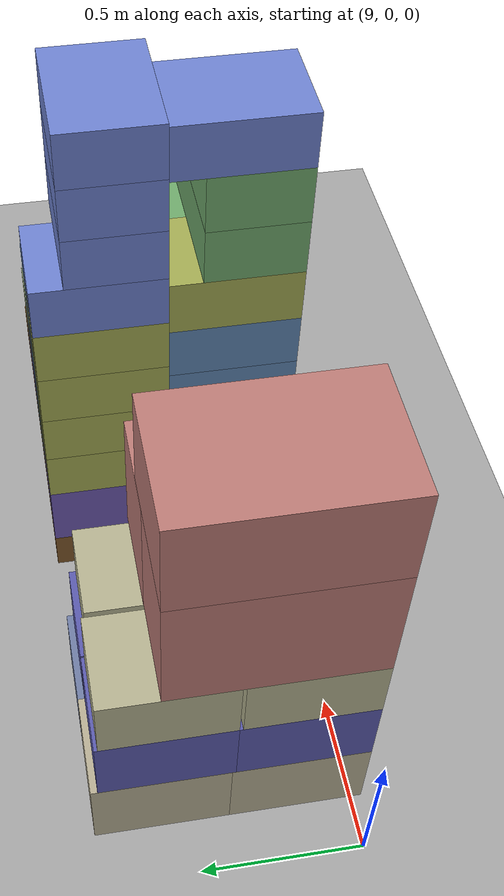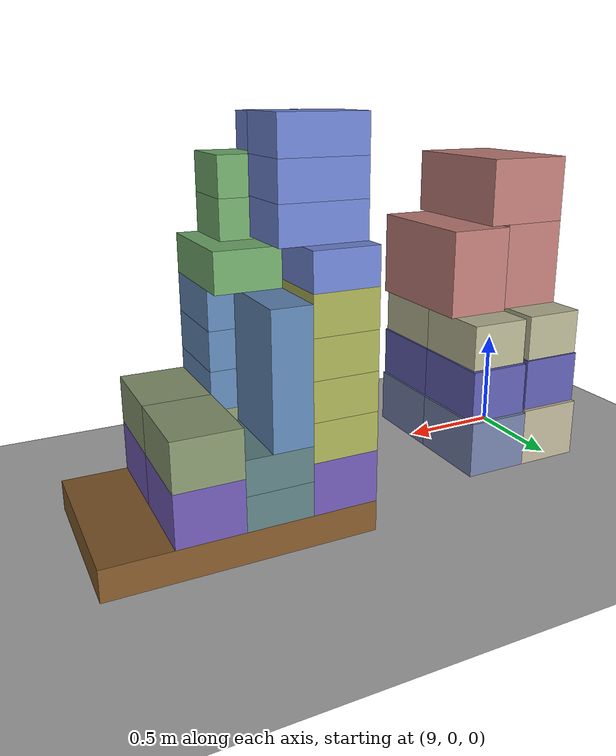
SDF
<sdf version="1.10">
 <world name="pallet_towers">
  <model name="ground_plane">
   <static>true</static>
   <link name="link">
    <collision name="collision">
     <geometry><plane><normal>0 0 1</normal><size>30 30</size></plane></geometry>
     <surface>
      <friction><ode><mu>0.35</mu><mu2>0.35</mu2></ode></friction>
      <bounce><restitution_coefficient>0</restitution_coefficient><threshold>100000</threshold></bounce>
      <contact><ode><kp>1000000</kp><kd>100</kd><max_vel>1</max_vel><min_depth>0.0005</min_depth></ode></contact>
     </surface>
    </collision>
    <visual name="visual">
     <geometry><plane><normal>0 0 1</normal><size>30 30</size></plane></geometry>
     <material><ambient>0.65 0.65 0.65 1</ambient><diffuse>0.65 0.65 0.65 1</diffuse></material>
    </visual>
   </link>
  </model>
  <model name="box_p06_0001_WATER24_003_WATER24">
   <static>false</static>
   <pose>9.25 0.6 0.279 0 0 0</pose>
   <link name="body">
    <inertial>
     <mass>13</mass>
     <inertia>
      <ixx>0.252308333</ixx>
      <ixy>0</ixy>
      <ixz>0</ixz>
      <iyy>0.176475</iyy>
      <iyz>0</iyz>
      <izz>0.270833333</izz>
     </inertia>
    </inertial>
    <collision name="collision">
     <geometry><box><size>0.3 0.4 0.27</size></box></geometry>
     <surface>
      <friction><ode><mu>0.35</mu><mu2>0.35</mu2></ode></friction>
      <bounce><restitution_coefficient>0</restitution_coefficient><threshold>100000</threshold></bounce>
      <contact><ode><kp>1000000</kp><kd>100</kd><max_vel>1</max_vel><min_depth>0.0005</min_depth></ode></contact>
     </surface>
    </collision>
    <visual name="visual">
     <geometry><box><size>0.3 0.4 0.27</size></box></geometry>
     <material>
      <ambient>0.721568627 0.68627451 0.584313725 1</ambient>
      <diffuse>0.721568627 0.68627451 0.584313725 1</diffuse>
      <specular>0.05 0.05 0.05 1</specular>
     </material>
    </visual>
   </link>
  </model>
  <model name="box_p06_0002_WATER24_004_WATER24">
   <static>false</static>
   <pose>9.25 0.2 0.279 0 0 0</pose>
   <link name="body">
    <inertial>
     <mass>13</mass>
     <inertia>
      <ixx>0.252308333</ixx>
      <ixy>0</ixy>
      <ixz>0</ixz>
      <iyy>0.176475</iyy>
      <iyz>0</iyz>
      <izz>0.270833333</izz>
     </inertia>
    </inertial>
    <collision name="collision">
     <geometry><box><size>0.3 0.4 0.27</size></box></geometry>
     <surface>
      <friction><ode><mu>0.35</mu><mu2>0.35</mu2></ode></friction>
      <bounce><restitution_coefficient>0</restitution_coefficient><threshold>100000</threshold></bounce>
      <contact><ode><kp>1000000</kp><kd>100</kd><max_vel>1</max_vel><min_depth>0.0005</min_depth></ode></contact>
     </surface>
    </collision>
    <visual name="visual">
     <geometry><box><size>0.3 0.4 0.27</size></box></geometry>
     <material>
      <ambient>0.721568627 0.68627451 0.584313725 1</ambient>
      <diffuse>0.721568627 0.68627451 0.584313725 1</diffuse>
      <specular>0.05 0.05 0.05 1</specular>
     </material>
    </visual>
   </link>
  </model>
  <model name="box_p06_0005_COLA24_001_COLA24">
   <static>false</static>
   <pose>9.55 0.6 0.274 0 0 0</pose>
   <link name="body">
    <inertial>
     <mass>13.5</mass>
     <inertia><ixx>0.25605</ixx><ixy>0</ixy><ixz>0</ixz><iyy>0.1773</iyy><iyz>0</iyz><izz>0.28125</izz></inertia>
    </inertial>
    <collision name="collision">
     <geometry><box><size>0.3 0.4 0.26</size></box></geometry>
     <surface>
      <friction><ode><mu>0.35</mu><mu2>0.35</mu2></ode></friction>
      <bounce><restitution_coefficient>0</restitution_coefficient><threshold>100000</threshold></bounce>
      <contact><ode><kp>1000000</kp><kd>100</kd><max_vel>1</max_vel><min_depth>0.0005</min_depth></ode></contact>
     </surface>
    </collision>
    <visual name="visual">
     <geometry><box><size>0.3 0.4 0.26</size></box></geometry>
     <material>
      <ambient>0.439215686 0.494117647 0.647058824 1</ambient>
      <diffuse>0.439215686 0.494117647 0.647058824 1</diffuse>
      <specular>0.05 0.05 0.05 1</specular>
     </material>
    </visual>
   </link>
  </model>
  <model name="box_p06_0008_COLA24_004_COLA24">
   <static>false</static>
   <pose>9.55 0.2 0.274 0 0 0</pose>
   <link name="body">
    <inertial>
     <mass>13.5</mass>
     <inertia><ixx>0.25605</ixx><ixy>0</ixy><ixz>0</ixz><iyy>0.1773</iyy><iyz>0</iyz><izz>0.28125</izz></inertia>
    </inertial>
    <collision name="collision">
     <geometry><box><size>0.3 0.4 0.26</size></box></geometry>
     <surface>
      <friction><ode><mu>0.35</mu><mu2>0.35</mu2></ode></friction>
      <bounce><restitution_coefficient>0</restitution_coefficient><threshold>100000</threshold></bounce>
      <contact><ode><kp>1000000</kp><kd>100</kd><max_vel>1</max_vel><min_depth>0.0005</min_depth></ode></contact>
     </surface>
    </collision>
    <visual name="visual">
     <geometry><box><size>0.3 0.4 0.26</size></box></geometry>
     <material>
      <ambient>0.439215686 0.494117647 0.647058824 1</ambient>
      <diffuse>0.439215686 0.494117647 0.647058824 1</diffuse>
      <specular>0.05 0.05 0.05 1</specular>
     </material>
    </visual>
   </link>
  </model>
  <model name="box_p06_0011_PASTA_001_PASTA">
   <static>false</static>
   <pose>9.545 0.195 0.524 0 0 0</pose>
   <link name="body">
    <inertial>
     <mass>8</mass>
     <inertia>
      <ixx>0.1398</ixx>
      <ixy>0</ixy>
      <ixz>0</ixz>
      <iyy>0.0944666667</iyy>
      <iyz>0</iyz>
      <izz>0.157466667</izz>
     </inertia>
    </inertial>
    <collision name="collision">
     <geometry><box><size>0.29 0.39 0.24</size></box></geometry>
     <surface>
      <friction><ode><mu>0.35</mu><mu2>0.35</mu2></ode></friction>
      <bounce><restitution_coefficient>0</restitution_coefficient><threshold>100000</threshold></bounce>
      <contact><ode><kp>1000000</kp><kd>100</kd><max_vel>1</max_vel><min_depth>0.0005</min_depth></ode></contact>
     </surface>
    </collision>
    <visual name="visual">
     <geometry><box><size>0.29 0.39 0.24</size></box></geometry>
     <material>
      <ambient>0.356862745 0.356862745 0.682352941 1</ambient>
      <diffuse>0.356862745 0.356862745 0.682352941 1</diffuse>
      <specular>0.05 0.05 0.05 1</specular>
     </material>
    </visual>
   </link>
  </model>
  <model name="box_p06_0012_PASTA_002_PASTA">
   <static>false</static>
   <pose>9.545 0.585 0.524 0 0 0</pose>
   <link name="body">
    <inertial>
     <mass>8</mass>
     <inertia>
      <ixx>0.1398</ixx>
      <ixy>0</ixy>
      <ixz>0</ixz>
      <iyy>0.0944666667</iyy>
      <iyz>0</iyz>
      <izz>0.157466667</izz>
     </inertia>
    </inertial>
    <collision name="collision">
     <geometry><box><size>0.29 0.39 0.24</size></box></geometry>
     <surface>
      <friction><ode><mu>0.35</mu><mu2>0.35</mu2></ode></friction>
      <bounce><restitution_coefficient>0</restitution_coefficient><threshold>100000</threshold></bounce>
      <contact><ode><kp>1000000</kp><kd>100</kd><max_vel>1</max_vel><min_depth>0.0005</min_depth></ode></contact>
     </surface>
    </collision>
    <visual name="visual">
     <geometry><box><size>0.29 0.39 0.24</size></box></geometry>
     <material>
      <ambient>0.356862745 0.356862745 0.682352941 1</ambient>
      <diffuse>0.356862745 0.356862745 0.682352941 1</diffuse>
      <specular>0.05 0.05 0.05 1</specular>
     </material>
    </visual>
   </link>
  </model>
  <model name="box_p06_0013_PASTA_003_PASTA">
   <static>false</static>
   <pose>9.245 0.195 0.534 0 0 0</pose>
   <link name="body">
    <inertial>
     <mass>8</mass>
     <inertia>
      <ixx>0.1398</ixx>
      <ixy>0</ixy>
      <ixz>0</ixz>
      <iyy>0.0944666667</iyy>
      <iyz>0</iyz>
      <izz>0.157466667</izz>
     </inertia>
    </inertial>
    <collision name="collision">
     <geometry><box><size>0.29 0.39 0.24</size></box></geometry>
     <surface>
      <friction><ode><mu>0.35</mu><mu2>0.35</mu2></ode></friction>
      <bounce><restitution_coefficient>0</restitution_coefficient><threshold>100000</threshold></bounce>
      <contact><ode><kp>1000000</kp><kd>100</kd><max_vel>1</max_vel><min_depth>0.0005</min_depth></ode></contact>
     </surface>
    </collision>
    <visual name="visual">
     <geometry><box><size>0.29 0.39 0.24</size></box></geometry>
     <material>
      <ambient>0.356862745 0.356862745 0.682352941 1</ambient>
      <diffuse>0.356862745 0.356862745 0.682352941 1</diffuse>
      <specular>0.05 0.05 0.05 1</specular>
     </material>
    </visual>
   </link>
  </model>
  <model name="box_p06_0014_PASTA_004_PASTA">
   <static>false</static>
   <pose>9.245 0.585 0.534 0 0 0</pose>
   <link name="body">
    <inertial>
     <mass>8</mass>
     <inertia>
      <ixx>0.1398</ixx>
      <ixy>0</ixy>
      <ixz>0</ixz>
      <iyy>0.0944666667</iyy>
      <iyz>0</iyz>
      <izz>0.157466667</izz>
     </inertia>
    </inertial>
    <collision name="collision">
     <geometry><box><size>0.29 0.39 0.24</size></box></geometry>
     <surface>
      <friction><ode><mu>0.35</mu><mu2>0.35</mu2></ode></friction>
      <bounce><restitution_coefficient>0</restitution_coefficient><threshold>100000</threshold></bounce>
      <contact><ode><kp>1000000</kp><kd>100</kd><max_vel>1</max_vel><min_depth>0.0005</min_depth></ode></contact>
     </surface>
    </collision>
    <visual name="visual">
     <geometry><box><size>0.29 0.39 0.24</size></box></geometry>
     <material>
      <ambient>0.356862745 0.356862745 0.682352941 1</ambient>
      <diffuse>0.356862745 0.356862745 0.682352941 1</diffuse>
      <specular>0.05 0.05 0.05 1</specular>
     </material>
    </visual>
   </link>
  </model>
  <model name="box_p06_0017_TOMATO_001_TOMATO">
   <static>false</static>
   <pose>9.54 0.19 0.749 0 0 0</pose>
   <link name="body">
    <inertial>
     <mass>9</mass>
     <inertia><ixx>0.141375</ixx><ixy>0</ixy><ixz>0</ixz><iyy>0.091875</iyy><iyz>0</iyz><izz>0.1671</izz></inertia>
    </inertial>
    <collision name="collision">
     <geometry><box><size>0.28 0.38 0.21</size></box></geometry>
     <surface>
      <friction><ode><mu>0.35</mu><mu2>0.35</mu2></ode></friction>
      <bounce><restitution_coefficient>0</restitution_coefficient><threshold>100000</threshold></bounce>
      <contact><ode><kp>1000000</kp><kd>100</kd><max_vel>1</max_vel><min_depth>0.0005</min_depth></ode></contact>
     </surface>
    </collision>
    <visual name="visual">
     <geometry><box><size>0.28 0.38 0.21</size></box></geometry>
     <material>
      <ambient>0.71372549 0.701960784 0.568627451 1</ambient>
      <diffuse>0.71372549 0.701960784 0.568627451 1</diffuse>
      <specular>0.05 0.05 0.05 1</specular>
     </material>
    </visual>
   </link>
  </model>
  <model name="box_p06_0018_TOMATO_002_TOMATO">
   <static>false</static>
   <pose>9.54 0.57 0.749 0 0 0</pose>
   <link name="body">
    <inertial>
     <mass>9</mass>
     <inertia><ixx>0.141375</ixx><ixy>0</ixy><ixz>0</ixz><iyy>0.091875</iyy><iyz>0</iyz><izz>0.1671</izz></inertia>
    </inertial>
    <collision name="collision">
     <geometry><box><size>0.28 0.38 0.21</size></box></geometry>
     <surface>
      <friction><ode><mu>0.35</mu><mu2>0.35</mu2></ode></friction>
      <bounce><restitution_coefficient>0</restitution_coefficient><threshold>100000</threshold></bounce>
      <contact><ode><kp>1000000</kp><kd>100</kd><max_vel>1</max_vel><min_depth>0.0005</min_depth></ode></contact>
     </surface>
    </collision>
    <visual name="visual">
     <geometry><box><size>0.28 0.38 0.21</size></box></geometry>
     <material>
      <ambient>0.71372549 0.701960784 0.568627451 1</ambient>
      <diffuse>0.71372549 0.701960784 0.568627451 1</diffuse>
      <specular>0.05 0.05 0.05 1</specular>
     </material>
    </visual>
   </link>
  </model>
  <model name="box_p06_0019_TOMATO_003_TOMATO">
   <static>false</static>
   <pose>9.24 0.58 0.759 0 0 0</pose>
   <link name="body">
    <inertial>
     <mass>9</mass>
     <inertia><ixx>0.141375</ixx><ixy>0</ixy><ixz>0</ixz><iyy>0.091875</iyy><iyz>0</iyz><izz>0.1671</izz></inertia>
    </inertial>
    <collision name="collision">
     <geometry><box><size>0.28 0.38 0.21</size></box></geometry>
     <surface>
      <friction><ode><mu>0.35</mu><mu2>0.35</mu2></ode></friction>
      <bounce><restitution_coefficient>0</restitution_coefficient><threshold>100000</threshold></bounce>
      <contact><ode><kp>1000000</kp><kd>100</kd><max_vel>1</max_vel><min_depth>0.0005</min_depth></ode></contact>
     </surface>
    </collision>
    <visual name="visual">
     <geometry><box><size>0.28 0.38 0.21</size></box></geometry>
     <material>
      <ambient>0.71372549 0.701960784 0.568627451 1</ambient>
      <diffuse>0.71372549 0.701960784 0.568627451 1</diffuse>
      <specular>0.05 0.05 0.05 1</specular>
     </material>
    </visual>
   </link>
  </model>
  <model name="box_p06_0020_TOMATO_004_TOMATO">
   <static>false</static>
   <pose>9.24 0.19 0.759 0 0 0</pose>
   <link name="body">
    <inertial>
     <mass>9</mass>
     <inertia><ixx>0.141375</ixx><ixy>0</ixy><ixz>0</ixz><iyy>0.091875</iyy><iyz>0</iyz><izz>0.1671</izz></inertia>
    </inertial>
    <collision name="collision">
     <geometry><box><size>0.28 0.38 0.21</size></box></geometry>
     <surface>
      <friction><ode><mu>0.35</mu><mu2>0.35</mu2></ode></friction>
      <bounce><restitution_coefficient>0</restitution_coefficient><threshold>100000</threshold></bounce>
      <contact><ode><kp>1000000</kp><kd>100</kd><max_vel>1</max_vel><min_depth>0.0005</min_depth></ode></contact>
     </surface>
    </collision>
    <visual name="visual">
     <geometry><box><size>0.28 0.38 0.21</size></box></geometry>
     <material>
      <ambient>0.71372549 0.701960784 0.568627451 1</ambient>
      <diffuse>0.71372549 0.701960784 0.568627451 1</diffuse>
      <specular>0.05 0.05 0.05 1</specular>
     </material>
    </visual>
   </link>
  </model>
  <model name="box_p06_0024_CEREAL_002_CEREAL">
   <static>false</static>
   <pose>9.55 0.3 1.054 0 0 0</pose>
   <link name="body">
    <inertial>
     <mass>4</mass>
     <inertia>
      <ixx>0.173333333</ixx>
      <ixy>0</ixy>
      <ixz>0</ixz>
      <iyy>0.0833333333</iyy>
      <iyz>0</iyz>
      <izz>0.15</izz>
     </inertia>
    </inertial>
    <collision name="collision">
     <geometry><box><size>0.3 0.6 0.4</size></box></geometry>
     <surface>
      <friction><ode><mu>0.35</mu><mu2>0.35</mu2></ode></friction>
      <bounce><restitution_coefficient>0</restitution_coefficient><threshold>100000</threshold></bounce>
      <contact><ode><kp>1000000</kp><kd>100</kd><max_vel>1</max_vel><min_depth>0.0005</min_depth></ode></contact>
     </surface>
    </collision>
    <visual name="visual">
     <geometry><box><size>0.3 0.6 0.4</size></box></geometry>
     <material>
      <ambient>0.741176471 0.48627451 0.462745098 1</ambient>
      <diffuse>0.741176471 0.48627451 0.462745098 1</diffuse>
      <specular>0.05 0.05 0.05 1</specular>
     </material>
    </visual>
   </link>
  </model>
  <model name="box_p06_0025_CEREAL_003_CEREAL">
   <static>false</static>
   <pose>9.25 0.3 1.064 0 0 0</pose>
   <link name="body">
    <inertial>
     <mass>4</mass>
     <inertia>
      <ixx>0.173333333</ixx>
      <ixy>0</ixy>
      <ixz>0</ixz>
      <iyy>0.0833333333</iyy>
      <iyz>0</iyz>
      <izz>0.15</izz>
     </inertia>
    </inertial>
    <collision name="collision">
     <geometry><box><size>0.3 0.6 0.4</size></box></geometry>
     <surface>
      <friction><ode><mu>0.35</mu><mu2>0.35</mu2></ode></friction>
      <bounce><restitution_coefficient>0</restitution_coefficient><threshold>100000</threshold></bounce>
      <contact><ode><kp>1000000</kp><kd>100</kd><max_vel>1</max_vel><min_depth>0.0005</min_depth></ode></contact>
     </surface>
    </collision>
    <visual name="visual">
     <geometry><box><size>0.3 0.6 0.4</size></box></geometry>
     <material>
      <ambient>0.741176471 0.48627451 0.462745098 1</ambient>
      <diffuse>0.741176471 0.48627451 0.462745098 1</diffuse>
      <specular>0.05 0.05 0.05 1</specular>
     </material>
    </visual>
   </link>
  </model>
  <model name="box_p06_0028_CEREAL_006_CEREAL">
   <static>false</static>
   <pose>9.3 0.3 1.414 0 0 0</pose>
   <link name="body">
    <inertial>
     <mass>4</mass>
     <inertia>
      <ixx>0.15</ixx>
      <ixy>0</ixy>
      <ixz>0</ixz>
      <iyy>0.0833333333</iyy>
      <iyz>0</iyz>
      <izz>0.173333333</izz>
     </inertia>
    </inertial>
    <collision name="collision">
     <geometry><box><size>0.4 0.6 0.3</size></box></geometry>
     <surface>
      <friction><ode><mu>0.35</mu><mu2>0.35</mu2></ode></friction>
      <bounce><restitution_coefficient>0</restitution_coefficient><threshold>100000</threshold></bounce>
      <contact><ode><kp>1000000</kp><kd>100</kd><max_vel>1</max_vel><min_depth>0.0005</min_depth></ode></contact>
     </surface>
    </collision>
    <visual name="visual">
     <geometry><box><size>0.4 0.6 0.3</size></box></geometry>
     <material>
      <ambient>0.741176471 0.48627451 0.462745098 1</ambient>
      <diffuse>0.741176471 0.48627451 0.462745098 1</diffuse>
      <specular>0.05 0.05 0.05 1</specular>
     </material>
    </visual>
   </link>
  </model>
  <model name="pallet_07_7">
   <static>false</static>
   <pose>10.8 0.4 0.072 0 0 0</pose>
   <link name="body">
    <inertial>
     <mass>25</mass>
     <inertia>
      <ixx>1.37653333</ixx>
      <ixy>0</ixy>
      <ixz>0</ixz>
      <iyy>3.0432</iyy>
      <iyz>0</iyz>
      <izz>4.33333333</izz>
     </inertia>
    </inertial>
    <collision name="collision">
     <geometry><box><size>1.2 0.8 0.144</size></box></geometry>
     <surface>
      <friction><ode><mu>0.35</mu><mu2>0.35</mu2></ode></friction>
      <bounce><restitution_coefficient>0</restitution_coefficient><threshold>100000</threshold></bounce>
      <contact><ode><kp>1000000</kp><kd>100</kd><max_vel>1</max_vel><min_depth>0.0005</min_depth></ode></contact>
     </surface>
    </collision>
    <visual name="visual">
     <geometry><box><size>1.2 0.8 0.144</size></box></geometry>
     <material>
      <ambient>0.5 0.34 0.16 1</ambient>
      <diffuse>0.5 0.34 0.16 1</diffuse>
      <specular>0.05 0.05 0.05 1</specular>
     </material>
    </visual>
   </link>
  </model>
  <model name="box_p07_0001_OATS_004_OATS">
   <static>false</static>
   <pose>10.95 0.6 0.264 0 0 0</pose>
   <link name="body">
    <inertial>
     <mass>7</mass>
     <inertia>
      <ixx>0.126933333</ixx>
      <ixy>0</ixy>
      <ixz>0</ixz>
      <iyy>0.0861</iyy>
      <iyz>0</iyz>
      <izz>0.145833333</izz>
     </inertia>
    </inertial>
    <collision name="collision">
     <geometry><box><size>0.3 0.4 0.24</size></box></geometry>
     <surface>
      <friction><ode><mu>0.35</mu><mu2>0.35</mu2></ode></friction>
      <bounce><restitution_coefficient>0</restitution_coefficient><threshold>100000</threshold></bounce>
      <contact><ode><kp>1000000</kp><kd>100</kd><max_vel>1</max_vel><min_depth>0.0005</min_depth></ode></contact>
     </surface>
    </collision>
    <visual name="visual">
     <geometry><box><size>0.3 0.4 0.24</size></box></geometry>
     <material>
      <ambient>0.42745098 0.345098039 0.690196078 1</ambient>
      <diffuse>0.42745098 0.345098039 0.690196078 1</diffuse>
      <specular>0.05 0.05 0.05 1</specular>
     </material>
    </visual>
   </link>
  </model>
  <model name="box_p07_0002_OATS_005_OATS">
   <static>false</static>
   <pose>10.95 0.2 0.264 0 0 0</pose>
   <link name="body">
    <inertial>
     <mass>7</mass>
     <inertia>
      <ixx>0.126933333</ixx>
      <ixy>0</ixy>
      <ixz>0</ixz>
      <iyy>0.0861</iyy>
      <iyz>0</iyz>
      <izz>0.145833333</izz>
     </inertia>
    </inertial>
    <collision name="collision">
     <geometry><box><size>0.3 0.4 0.24</size></box></geometry>
     <surface>
      <friction><ode><mu>0.35</mu><mu2>0.35</mu2></ode></friction>
      <bounce><restitution_coefficient>0</restitution_coefficient><threshold>100000</threshold></bounce>
      <contact><ode><kp>1000000</kp><kd>100</kd><max_vel>1</max_vel><min_depth>0.0005</min_depth></ode></contact>
     </surface>
    </collision>
    <visual name="visual">
     <geometry><box><size>0.3 0.4 0.24</size></box></geometry>
     <material>
      <ambient>0.42745098 0.345098039 0.690196078 1</ambient>
      <diffuse>0.42745098 0.345098039 0.690196078 1</diffuse>
      <specular>0.05 0.05 0.05 1</specular>
     </material>
    </visual>
   </link>
  </model>
  <model name="box_p07_0003_OATS_006_OATS">
   <static>false</static>
   <pose>10.35 0.6 0.264 0 0 0</pose>
   <link name="body">
    <inertial>
     <mass>7</mass>
     <inertia>
      <ixx>0.126933333</ixx>
      <ixy>0</ixy>
      <ixz>0</ixz>
      <iyy>0.0861</iyy>
      <iyz>0</iyz>
      <izz>0.145833333</izz>
     </inertia>
    </inertial>
    <collision name="collision">
     <geometry><box><size>0.3 0.4 0.24</size></box></geometry>
     <surface>
      <friction><ode><mu>0.35</mu><mu2>0.35</mu2></ode></friction>
      <bounce><restitution_coefficient>0</restitution_coefficient><threshold>100000</threshold></bounce>
      <contact><ode><kp>1000000</kp><kd>100</kd><max_vel>1</max_vel><min_depth>0.0005</min_depth></ode></contact>
     </surface>
    </collision>
    <visual name="visual">
     <geometry><box><size>0.3 0.4 0.24</size></box></geometry>
     <material>
      <ambient>0.42745098 0.345098039 0.690196078 1</ambient>
      <diffuse>0.42745098 0.345098039 0.690196078 1</diffuse>
      <specular>0.05 0.05 0.05 1</specular>
     </material>
    </visual>
   </link>
  </model>
  <model name="box_p07_0004_CHEESE_001_CHEESE">
   <static>false</static>
   <pose>10.35 0.2 0.224 0 0 0</pose>
   <link name="body">
    <inertial>
     <mass>9.5</mass>
     <inertia>
      <ixx>0.146933333</ixx>
      <ixy>0</ixy>
      <ixz>0</ixz>
      <iyy>0.0915166667</iyy>
      <iyz>0</iyz>
      <izz>0.197916667</izz>
     </inertia>
    </inertial>
    <collision name="collision">
     <geometry><box><size>0.3 0.4 0.16</size></box></geometry>
     <surface>
      <friction><ode><mu>0.35</mu><mu2>0.35</mu2></ode></friction>
      <bounce><restitution_coefficient>0</restitution_coefficient><threshold>100000</threshold></bounce>
      <contact><ode><kp>1000000</kp><kd>100</kd><max_vel>1</max_vel><min_depth>0.0005</min_depth></ode></contact>
     </surface>
    </collision>
    <visual name="visual">
     <geometry><box><size>0.3 0.4 0.16</size></box></geometry>
     <material>
      <ambient>0.356862745 0.494117647 0.501960784 1</ambient>
      <diffuse>0.356862745 0.494117647 0.501960784 1</diffuse>
      <specular>0.05 0.05 0.05 1</specular>
     </material>
    </visual>
   </link>
  </model>
  <model name="box_p07_0006_CHEESE_003_CHEESE">
   <static>false</static>
   <pose>10.65 0.2 0.224 0 0 0</pose>
   <link name="body">
    <inertial>
     <mass>9.5</mass>
     <inertia>
      <ixx>0.146933333</ixx>
      <ixy>0</ixy>
      <ixz>0</ixz>
      <iyy>0.0915166667</iyy>
      <iyz>0</iyz>
      <izz>0.197916667</izz>
     </inertia>
    </inertial>
    <collision name="collision">
     <geometry><box><size>0.3 0.4 0.16</size></box></geometry>
     <surface>
      <friction><ode><mu>0.35</mu><mu2>0.35</mu2></ode></friction>
      <bounce><restitution_coefficient>0</restitution_coefficient><threshold>100000</threshold></bounce>
      <contact><ode><kp>1000000</kp><kd>100</kd><max_vel>1</max_vel><min_depth>0.0005</min_depth></ode></contact>
     </surface>
    </collision>
    <visual name="visual">
     <geometry><box><size>0.3 0.4 0.16</size></box></geometry>
     <material>
      <ambient>0.356862745 0.494117647 0.501960784 1</ambient>
      <diffuse>0.356862745 0.494117647 0.501960784 1</diffuse>
      <specular>0.05 0.05 0.05 1</specular>
     </material>
    </visual>
   </link>
  </model>
  <model name="box_p07_0007_CHEESE_004_CHEESE">
   <static>false</static>
   <pose>10.65 0.6 0.224 0 0 0</pose>
   <link name="body">
    <inertial>
     <mass>9.5</mass>
     <inertia>
      <ixx>0.146933333</ixx>
      <ixy>0</ixy>
      <ixz>0</ixz>
      <iyy>0.0915166667</iyy>
      <iyz>0</iyz>
      <izz>0.197916667</izz>
     </inertia>
    </inertial>
    <collision name="collision">
     <geometry><box><size>0.3 0.4 0.16</size></box></geometry>
     <surface>
      <friction><ode><mu>0.35</mu><mu2>0.35</mu2></ode></friction>
      <bounce><restitution_coefficient>0</restitution_coefficient><threshold>100000</threshold></bounce>
      <contact><ode><kp>1000000</kp><kd>100</kd><max_vel>1</max_vel><min_depth>0.0005</min_depth></ode></contact>
     </surface>
    </collision>
    <visual name="visual">
     <geometry><box><size>0.3 0.4 0.16</size></box></geometry>
     <material>
      <ambient>0.356862745 0.494117647 0.501960784 1</ambient>
      <diffuse>0.356862745 0.494117647 0.501960784 1</diffuse>
      <specular>0.05 0.05 0.05 1</specular>
     </material>
    </visual>
   </link>
  </model>
  <model name="box_p07_0009_CHEESE_006_CHEESE">
   <static>false</static>
   <pose>10.65 0.6 0.384 0 0 0</pose>
   <link name="body">
    <inertial>
     <mass>9.5</mass>
     <inertia>
      <ixx>0.146933333</ixx>
      <ixy>0</ixy>
      <ixz>0</ixz>
      <iyy>0.0915166667</iyy>
      <iyz>0</iyz>
      <izz>0.197916667</izz>
     </inertia>
    </inertial>
    <collision name="collision">
     <geometry><box><size>0.3 0.4 0.16</size></box></geometry>
     <surface>
      <friction><ode><mu>0.35</mu><mu2>0.35</mu2></ode></friction>
      <bounce><restitution_coefficient>0</restitution_coefficient><threshold>100000</threshold></bounce>
      <contact><ode><kp>1000000</kp><kd>100</kd><max_vel>1</max_vel><min_depth>0.0005</min_depth></ode></contact>
     </surface>
    </collision>
    <visual name="visual">
     <geometry><box><size>0.3 0.4 0.16</size></box></geometry>
     <material>
      <ambient>0.356862745 0.494117647 0.501960784 1</ambient>
      <diffuse>0.356862745 0.494117647 0.501960784 1</diffuse>
      <specular>0.05 0.05 0.05 1</specular>
     </material>
    </visual>
   </link>
  </model>
  <model name="box_p07_0010_FRZVEG_001_FRZVEG">
   <static>false</static>
   <pose>10.65 0.2 0.414 0 0 0</pose>
   <link name="body">
    <inertial>
     <mass>7.5</mass>
     <inertia><ixx>0.13025</ixx><ixy>0</ixy><ixz>0</ixz><iyy>0.0865</iyy><iyz>0</iyz><izz>0.15625</izz></inertia>
    </inertial>
    <collision name="collision">
     <geometry><box><size>0.3 0.4 0.22</size></box></geometry>
     <surface>
      <friction><ode><mu>0.35</mu><mu2>0.35</mu2></ode></friction>
      <bounce><restitution_coefficient>0</restitution_coefficient><threshold>100000</threshold></bounce>
      <contact><ode><kp>1000000</kp><kd>100</kd><max_vel>1</max_vel><min_depth>0.0005</min_depth></ode></contact>
     </surface>
    </collision>
    <visual name="visual">
     <geometry><box><size>0.3 0.4 0.22</size></box></geometry>
     <material>
      <ambient>0.525490196 0.584313725 0.431372549 1</ambient>
      <diffuse>0.525490196 0.584313725 0.431372549 1</diffuse>
      <specular>0.05 0.05 0.05 1</specular>
     </material>
    </visual>
   </link>
  </model>
  <model name="box_p07_0011_FRZVEG_002_FRZVEG">
   <static>false</static>
   <pose>10.35 0.2 0.414 0 0 0</pose>
   <link name="body">
    <inertial>
     <mass>7.5</mass>
     <inertia><ixx>0.13025</ixx><ixy>0</ixy><ixz>0</ixz><iyy>0.0865</iyy><iyz>0</iyz><izz>0.15625</izz></inertia>
    </inertial>
    <collision name="collision">
     <geometry><box><size>0.3 0.4 0.22</size></box></geometry>
     <surface>
      <friction><ode><mu>0.35</mu><mu2>0.35</mu2></ode></friction>
      <bounce><restitution_coefficient>0</restitution_coefficient><threshold>100000</threshold></bounce>
      <contact><ode><kp>1000000</kp><kd>100</kd><max_vel>1</max_vel><min_depth>0.0005</min_depth></ode></contact>
     </surface>
    </collision>
    <visual name="visual">
     <geometry><box><size>0.3 0.4 0.22</size></box></geometry>
     <material>
      <ambient>0.525490196 0.584313725 0.431372549 1</ambient>
      <diffuse>0.525490196 0.584313725 0.431372549 1</diffuse>
      <specular>0.05 0.05 0.05 1</specular>
     </material>
    </visual>
   </link>
  </model>
  <model name="box_p07_0014_FRZVEG_005_FRZVEG">
   <static>false</static>
   <pose>10.95 0.2 0.494 0 0 0</pose>
   <link name="body">
    <inertial>
     <mass>7.5</mass>
     <inertia><ixx>0.13025</ixx><ixy>0</ixy><ixz>0</ixz><iyy>0.0865</iyy><iyz>0</iyz><izz>0.15625</izz></inertia>
    </inertial>
    <collision name="collision">
     <geometry><box><size>0.3 0.4 0.22</size></box></geometry>
     <surface>
      <friction><ode><mu>0.35</mu><mu2>0.35</mu2></ode></friction>
      <bounce><restitution_coefficient>0</restitution_coefficient><threshold>100000</threshold></bounce>
      <contact><ode><kp>1000000</kp><kd>100</kd><max_vel>1</max_vel><min_depth>0.0005</min_depth></ode></contact>
     </surface>
    </collision>
    <visual name="visual">
     <geometry><box><size>0.3 0.4 0.22</size></box></geometry>
     <material>
      <ambient>0.525490196 0.584313725 0.431372549 1</ambient>
      <diffuse>0.525490196 0.584313725 0.431372549 1</diffuse>
      <specular>0.05 0.05 0.05 1</specular>
     </material>
    </visual>
   </link>
  </model>
  <model name="box_p07_0015_FRZVEG_006_FRZVEG">
   <static>false</static>
   <pose>10.95 0.6 0.494 0 0 0</pose>
   <link name="body">
    <inertial>
     <mass>7.5</mass>
     <inertia><ixx>0.13025</ixx><ixy>0</ixy><ixz>0</ixz><iyy>0.0865</iyy><iyz>0</iyz><izz>0.15625</izz></inertia>
    </inertial>
    <collision name="collision">
     <geometry><box><size>0.3 0.4 0.22</size></box></geometry>
     <surface>
      <friction><ode><mu>0.35</mu><mu2>0.35</mu2></ode></friction>
      <bounce><restitution_coefficient>0</restitution_coefficient><threshold>100000</threshold></bounce>
      <contact><ode><kp>1000000</kp><kd>100</kd><max_vel>1</max_vel><min_depth>0.0005</min_depth></ode></contact>
     </surface>
    </collision>
    <visual name="visual">
     <geometry><box><size>0.3 0.4 0.22</size></box></geometry>
     <material>
      <ambient>0.525490196 0.584313725 0.431372549 1</ambient>
      <diffuse>0.525490196 0.584313725 0.431372549 1</diffuse>
      <specular>0.05 0.05 0.05 1</specular>
     </material>
    </visual>
   </link>
  </model>
  <model name="box_p07_0016_PIZZA_001_PIZZA">
   <static>false</static>
   <pose>10.5 0.2 0.614 0 0 0</pose>
   <link name="body">
    <inertial>
     <mass>6</mass>
     <inertia><ixx>0.0962</ixx><ixy>0</ixy><ixz>0</ixz><iyy>0.1962</iyy><iyz>0</iyz><izz>0.26</izz></inertia>
    </inertial>
    <collision name="collision">
     <geometry><box><size>0.6 0.4 0.18</size></box></geometry>
     <surface>
      <friction><ode><mu>0.35</mu><mu2>0.35</mu2></ode></friction>
      <bounce><restitution_coefficient>0</restitution_coefficient><threshold>100000</threshold></bounce>
      <contact><ode><kp>1000000</kp><kd>100</kd><max_vel>1</max_vel><min_depth>0.0005</min_depth></ode></contact>
     </surface>
    </collision>
    <visual name="visual">
     <geometry><box><size>0.6 0.4 0.18</size></box></geometry>
     <material>
      <ambient>0.37254902 0.525490196 0.701960784 1</ambient>
      <diffuse>0.37254902 0.525490196 0.701960784 1</diffuse>
      <specular>0.05 0.05 0.05 1</specular>
     </material>
    </visual>
   </link>
  </model>
  <model name="box_p07_0018_PIZZA_003_PIZZA">
   <static>false</static>
   <pose>10.5 0.2 0.794 0 0 0</pose>
   <link name="body">
    <inertial>
     <mass>6</mass>
     <inertia><ixx>0.0962</ixx><ixy>0</ixy><ixz>0</ixz><iyy>0.1962</iyy><iyz>0</iyz><izz>0.26</izz></inertia>
    </inertial>
    <collision name="collision">
     <geometry><box><size>0.6 0.4 0.18</size></box></geometry>
     <surface>
      <friction><ode><mu>0.35</mu><mu2>0.35</mu2></ode></friction>
      <bounce><restitution_coefficient>0</restitution_coefficient><threshold>100000</threshold></bounce>
      <contact><ode><kp>1000000</kp><kd>100</kd><max_vel>1</max_vel><min_depth>0.0005</min_depth></ode></contact>
     </surface>
    </collision>
    <visual name="visual">
     <geometry><box><size>0.6 0.4 0.18</size></box></geometry>
     <material>
      <ambient>0.37254902 0.525490196 0.701960784 1</ambient>
      <diffuse>0.37254902 0.525490196 0.701960784 1</diffuse>
      <specular>0.05 0.05 0.05 1</specular>
     </material>
    </visual>
   </link>
  </model>
  <model name="box_p07_0020_PIZZA_005_PIZZA">
   <static>false</static>
   <pose>10.5 0.2 0.974 0 0 0</pose>
   <link name="body">
    <inertial>
     <mass>6</mass>
     <inertia><ixx>0.0962</ixx><ixy>0</ixy><ixz>0</ixz><iyy>0.1962</iyy><iyz>0</iyz><izz>0.26</izz></inertia>
    </inertial>
    <collision name="collision">
     <geometry><box><size>0.6 0.4 0.18</size></box></geometry>
     <surface>
      <friction><ode><mu>0.35</mu><mu2>0.35</mu2></ode></friction>
      <bounce><restitution_coefficient>0</restitution_coefficient><threshold>100000</threshold></bounce>
      <contact><ode><kp>1000000</kp><kd>100</kd><max_vel>1</max_vel><min_depth>0.0005</min_depth></ode></contact>
     </surface>
    </collision>
    <visual name="visual">
     <geometry><box><size>0.6 0.4 0.18</size></box></geometry>
     <material>
      <ambient>0.37254902 0.525490196 0.701960784 1</ambient>
      <diffuse>0.37254902 0.525490196 0.701960784 1</diffuse>
      <specular>0.05 0.05 0.05 1</specular>
     </material>
    </visual>
   </link>
  </model>
  <model name="box_p07_0021_PIZZA_006_PIZZA">
   <static>false</static>
   <pose>10.59 0.6 0.764 0 0 0</pose>
   <link name="body">
    <inertial>
     <mass>6</mass>
     <inertia><ixx>0.26</ixx><ixy>0</ixy><ixz>0</ixz><iyy>0.1962</iyy><iyz>0</iyz><izz>0.0962</izz></inertia>
    </inertial>
    <collision name="collision">
     <geometry><box><size>0.18 0.4 0.6</size></box></geometry>
     <surface>
      <friction><ode><mu>0.35</mu><mu2>0.35</mu2></ode></friction>
      <bounce><restitution_coefficient>0</restitution_coefficient><threshold>100000</threshold></bounce>
      <contact><ode><kp>1000000</kp><kd>100</kd><max_vel>1</max_vel><min_depth>0.0005</min_depth></ode></contact>
     </surface>
    </collision>
    <visual name="visual">
     <geometry><box><size>0.18 0.4 0.6</size></box></geometry>
     <material>
      <ambient>0.37254902 0.525490196 0.701960784 1</ambient>
      <diffuse>0.37254902 0.525490196 0.701960784 1</diffuse>
      <specular>0.05 0.05 0.05 1</specular>
     </material>
    </visual>
   </link>
  </model>
  <model name="box_p07_0022_SALMON_001_SALMON">
   <static>false</static>
   <pose>10.35 0.6 0.474 0 0 0</pose>
   <link name="body">
    <inertial>
     <mass>8.5</mass>
     <inertia>
      <ixx>0.136283333</ixx>
      <ixy>0</ixy>
      <ixz>0</ixz>
      <iyy>0.0867</iyy>
      <iyz>0</iyz>
      <izz>0.177083333</izz>
     </inertia>
    </inertial>
    <collision name="collision">
     <geometry><box><size>0.3 0.4 0.18</size></box></geometry>
     <surface>
      <friction><ode><mu>0.35</mu><mu2>0.35</mu2></ode></friction>
      <bounce><restitution_coefficient>0</restitution_coefficient><threshold>100000</threshold></bounce>
      <contact><ode><kp>1000000</kp><kd>100</kd><max_vel>1</max_vel><min_depth>0.0005</min_depth></ode></contact>
     </surface>
    </collision>
    <visual name="visual">
     <geometry><box><size>0.3 0.4 0.18</size></box></geometry>
     <material>
      <ambient>0.647058824 0.678431373 0.329411765 1</ambient>
      <diffuse>0.647058824 0.678431373 0.329411765 1</diffuse>
      <specular>0.05 0.05 0.05 1</specular>
     </material>
    </visual>
   </link>
  </model>
  <model name="box_p07_0023_SALMON_002_SALMON">
   <static>false</static>
   <pose>10.35 0.6 0.654 0 0 0</pose>
   <link name="body">
    <inertial>
     <mass>8.5</mass>
     <inertia>
      <ixx>0.136283333</ixx>
      <ixy>0</ixy>
      <ixz>0</ixz>
      <iyy>0.0867</iyy>
      <iyz>0</iyz>
      <izz>0.177083333</izz>
     </inertia>
    </inertial>
    <collision name="collision">
     <geometry><box><size>0.3 0.4 0.18</size></box></geometry>
     <surface>
      <friction><ode><mu>0.35</mu><mu2>0.35</mu2></ode></friction>
      <bounce><restitution_coefficient>0</restitution_coefficient><threshold>100000</threshold></bounce>
      <contact><ode><kp>1000000</kp><kd>100</kd><max_vel>1</max_vel><min_depth>0.0005</min_depth></ode></contact>
     </surface>
    </collision>
    <visual name="visual">
     <geometry><box><size>0.3 0.4 0.18</size></box></geometry>
     <material>
      <ambient>0.647058824 0.678431373 0.329411765 1</ambient>
      <diffuse>0.647058824 0.678431373 0.329411765 1</diffuse>
      <specular>0.05 0.05 0.05 1</specular>
     </material>
    </visual>
   </link>
  </model>
  <model name="box_p07_0024_SALMON_003_SALMON">
   <static>false</static>
   <pose>10.35 0.6 0.834 0 0 0</pose>
   <link name="body">
    <inertial>
     <mass>8.5</mass>
     <inertia>
      <ixx>0.136283333</ixx>
      <ixy>0</ixy>
      <ixz>0</ixz>
      <iyy>0.0867</iyy>
      <iyz>0</iyz>
      <izz>0.177083333</izz>
     </inertia>
    </inertial>
    <collision name="collision">
     <geometry><box><size>0.3 0.4 0.18</size></box></geometry>
     <surface>
      <friction><ode><mu>0.35</mu><mu2>0.35</mu2></ode></friction>
      <bounce><restitution_coefficient>0</restitution_coefficient><threshold>100000</threshold></bounce>
      <contact><ode><kp>1000000</kp><kd>100</kd><max_vel>1</max_vel><min_depth>0.0005</min_depth></ode></contact>
     </surface>
    </collision>
    <visual name="visual">
     <geometry><box><size>0.3 0.4 0.18</size></box></geometry>
     <material>
      <ambient>0.647058824 0.678431373 0.329411765 1</ambient>
      <diffuse>0.647058824 0.678431373 0.329411765 1</diffuse>
      <specular>0.05 0.05 0.05 1</specular>
     </material>
    </visual>
   </link>
  </model>
  <model name="box_p07_0025_SALMON_004_SALMON">
   <static>false</static>
   <pose>10.35 0.6 1.014 0 0 0</pose>
   <link name="body">
    <inertial>
     <mass>8.5</mass>
     <inertia>
      <ixx>0.136283333</ixx>
      <ixy>0</ixy>
      <ixz>0</ixz>
      <iyy>0.0867</iyy>
      <iyz>0</iyz>
      <izz>0.177083333</izz>
     </inertia>
    </inertial>
    <collision name="collision">
     <geometry><box><size>0.3 0.4 0.18</size></box></geometry>
     <surface>
      <friction><ode><mu>0.35</mu><mu2>0.35</mu2></ode></friction>
      <bounce><restitution_coefficient>0</restitution_coefficient><threshold>100000</threshold></bounce>
      <contact><ode><kp>1000000</kp><kd>100</kd><max_vel>1</max_vel><min_depth>0.0005</min_depth></ode></contact>
     </surface>
    </collision>
    <visual name="visual">
     <geometry><box><size>0.3 0.4 0.18</size></box></geometry>
     <material>
      <ambient>0.647058824 0.678431373 0.329411765 1</ambient>
      <diffuse>0.647058824 0.678431373 0.329411765 1</diffuse>
      <specular>0.05 0.05 0.05 1</specular>
     </material>
    </visual>
   </link>
  </model>
  <model name="box_p07_0027_SALMON_006_SALMON">
   <static>false</static>
   <pose>10.35 0.2 1.154 0 0 0</pose>
   <link name="body">
    <inertial>
     <mass>8.5</mass>
     <inertia>
      <ixx>0.136283333</ixx>
      <ixy>0</ixy>
      <ixz>0</ixz>
      <iyy>0.0867</iyy>
      <iyz>0</iyz>
      <izz>0.177083333</izz>
     </inertia>
    </inertial>
    <collision name="collision">
     <geometry><box><size>0.3 0.4 0.18</size></box></geometry>
     <surface>
      <friction><ode><mu>0.35</mu><mu2>0.35</mu2></ode></friction>
      <bounce><restitution_coefficient>0</restitution_coefficient><threshold>100000</threshold></bounce>
      <contact><ode><kp>1000000</kp><kd>100</kd><max_vel>1</max_vel><min_depth>0.0005</min_depth></ode></contact>
     </surface>
    </collision>
    <visual name="visual">
     <geometry><box><size>0.3 0.4 0.18</size></box></geometry>
     <material>
      <ambient>0.647058824 0.678431373 0.329411765 1</ambient>
      <diffuse>0.647058824 0.678431373 0.329411765 1</diffuse>
      <specular>0.05 0.05 0.05 1</specular>
     </material>
    </visual>
   </link>
  </model>
  <model name="box_p07_0028_CHICKEN_001_CHICKEN">
   <static>false</static>
   <pose>10.65 0.25 1.154 0 0 0</pose>
   <link name="body">
    <inertial>
     <mass>10</mass>
     <inertia>
      <ixx>0.235333333</ixx>
      <ixy>0</ixy>
      <ixz>0</ixz>
      <iyy>0.102</iyy>
      <iyz>0</iyz>
      <izz>0.283333333</izz>
     </inertia>
    </inertial>
    <collision name="collision">
     <geometry><box><size>0.3 0.5 0.18</size></box></geometry>
     <surface>
      <friction><ode><mu>0.35</mu><mu2>0.35</mu2></ode></friction>
      <bounce><restitution_coefficient>0</restitution_coefficient><threshold>100000</threshold></bounce>
      <contact><ode><kp>1000000</kp><kd>100</kd><max_vel>1</max_vel><min_depth>0.0005</min_depth></ode></contact>
     </surface>
    </collision>
    <visual name="visual">
     <geometry><box><size>0.3 0.5 0.18</size></box></geometry>
     <material>
      <ambient>0.439215686 0.666666667 0.423529412 1</ambient>
      <diffuse>0.439215686 0.666666667 0.423529412 1</diffuse>
      <specular>0.05 0.05 0.05 1</specular>
     </material>
    </visual>
   </link>
  </model>
  <model name="box_p07_0030_CHICKEN_003_CHICKEN">
   <static>false</static>
   <pose>10.45 0.15 1.334 0 0 0</pose>
   <link name="body">
    <inertial>
     <mass>10</mass>
     <inertia>
      <ixx>0.102</ixx>
      <ixy>0</ixy>
      <ixz>0</ixz>
      <iyy>0.235333333</iyy>
      <iyz>0</iyz>
      <izz>0.283333333</izz>
     </inertia>
    </inertial>
    <collision name="collision">
     <geometry><box><size>0.5 0.3 0.18</size></box></geometry>
     <surface>
      <friction><ode><mu>0.35</mu><mu2>0.35</mu2></ode></friction>
      <bounce><restitution_coefficient>0</restitution_coefficient><threshold>100000</threshold></bounce>
      <contact><ode><kp>1000000</kp><kd>100</kd><max_vel>1</max_vel><min_depth>0.0005</min_depth></ode></contact>
     </surface>
    </collision>
    <visual name="visual">
     <geometry><box><size>0.5 0.3 0.18</size></box></geometry>
     <material>
      <ambient>0.439215686 0.666666667 0.423529412 1</ambient>
      <diffuse>0.439215686 0.666666667 0.423529412 1</diffuse>
      <specular>0.05 0.05 0.05 1</specular>
     </material>
    </visual>
   </link>
  </model>
  <model name="box_p07_0033_CHICKEN_006_CHICKEN">
   <static>false</static>
   <pose>10.45 0.15 1.514 0 0 0</pose>
   <link name="body">
    <inertial>
     <mass>10</mass>
     <inertia>
      <ixx>0.102</ixx>
      <ixy>0</ixy>
      <ixz>0</ixz>
      <iyy>0.235333333</iyy>
      <iyz>0</iyz>
      <izz>0.283333333</izz>
     </inertia>
    </inertial>
    <collision name="collision">
     <geometry><box><size>0.5 0.3 0.18</size></box></geometry>
     <surface>
      <friction><ode><mu>0.35</mu><mu2>0.35</mu2></ode></friction>
      <bounce><restitution_coefficient>0</restitution_coefficient><threshold>100000</threshold></bounce>
      <contact><ode><kp>1000000</kp><kd>100</kd><max_vel>1</max_vel><min_depth>0.0005</min_depth></ode></contact>
     </surface>
    </collision>
    <visual name="visual">
     <geometry><box><size>0.5 0.3 0.18</size></box></geometry>
     <material>
      <ambient>0.439215686 0.666666667 0.423529412 1</ambient>
      <diffuse>0.439215686 0.666666667 0.423529412 1</diffuse>
      <specular>0.05 0.05 0.05 1</specular>
     </material>
    </visual>
   </link>
  </model>
  <model name="box_p07_0034_BEEF_001_BEEF">
   <static>false</static>
   <pose>10.35 0.6 1.189 0 0 0</pose>
   <link name="body">
    <inertial>
     <mass>12</mass>
     <inertia><ixx>0.1889</ixx><ixy>0</ixy><ixz>0</ixz><iyy>0.1189</iyy><iyz>0</iyz><izz>0.25</izz></inertia>
    </inertial>
    <collision name="collision">
     <geometry><box><size>0.3 0.4 0.17</size></box></geometry>
     <surface>
      <friction><ode><mu>0.35</mu><mu2>0.35</mu2></ode></friction>
      <bounce><restitution_coefficient>0</restitution_coefficient><threshold>100000</threshold></bounce>
      <contact><ode><kp>1000000</kp><kd>100</kd><max_vel>1</max_vel><min_depth>0.0005</min_depth></ode></contact>
     </surface>
    </collision>
    <visual name="visual">
     <geometry><box><size>0.3 0.4 0.17</size></box></geometry>
     <material>
      <ambient>0.431372549 0.51372549 0.823529412 1</ambient>
      <diffuse>0.431372549 0.51372549 0.823529412 1</diffuse>
      <specular>0.05 0.05 0.05 1</specular>
     </material>
    </visual>
   </link>
  </model>
  <model name="box_p07_0035_BEEF_002_BEEF">
   <static>false</static>
   <pose>10.4 0.55 1.359 0 0 0</pose>
   <link name="body">
    <inertial>
     <mass>12</mass>
     <inertia><ixx>0.1189</ixx><ixy>0</ixy><ixz>0</ixz><iyy>0.1889</iyy><iyz>0</iyz><izz>0.25</izz></inertia>
    </inertial>
    <collision name="collision">
     <geometry><box><size>0.4 0.3 0.17</size></box></geometry>
     <surface>
      <friction><ode><mu>0.35</mu><mu2>0.35</mu2></ode></friction>
      <bounce><restitution_coefficient>0</restitution_coefficient><threshold>100000</threshold></bounce>
      <contact><ode><kp>1000000</kp><kd>100</kd><max_vel>1</max_vel><min_depth>0.0005</min_depth></ode></contact>
     </surface>
    </collision>
    <visual name="visual">
     <geometry><box><size>0.4 0.3 0.17</size></box></geometry>
     <material>
      <ambient>0.431372549 0.51372549 0.823529412 1</ambient>
      <diffuse>0.431372549 0.51372549 0.823529412 1</diffuse>
      <specular>0.05 0.05 0.05 1</specular>
     </material>
    </visual>
   </link>
  </model>
  <model name="box_p07_0036_BEEF_003_BEEF">
   <static>false</static>
   <pose>10.4 0.55 1.529 0 0 0</pose>
   <link name="body">
    <inertial>
     <mass>12</mass>
     <inertia><ixx>0.1189</ixx><ixy>0</ixy><ixz>0</ixz><iyy>0.1889</iyy><iyz>0</iyz><izz>0.25</izz></inertia>
    </inertial>
    <collision name="collision">
     <geometry><box><size>0.4 0.3 0.17</size></box></geometry>
     <surface>
      <friction><ode><mu>0.35</mu><mu2>0.35</mu2></ode></friction>
      <bounce><restitution_coefficient>0</restitution_coefficient><threshold>100000</threshold></bounce>
      <contact><ode><kp>1000000</kp><kd>100</kd><max_vel>1</max_vel><min_depth>0.0005</min_depth></ode></contact>
     </surface>
    </collision>
    <visual name="visual">
     <geometry><box><size>0.4 0.3 0.17</size></box></geometry>
     <material>
      <ambient>0.431372549 0.51372549 0.823529412 1</ambient>
      <diffuse>0.431372549 0.51372549 0.823529412 1</diffuse>
      <specular>0.05 0.05 0.05 1</specular>
     </material>
    </visual>
   </link>
  </model>
  <model name="box_p07_0038_BEEF_005_BEEF">
   <static>false</static>
   <pose>10.35 0.2 1.689 0 0 0</pose>
   <link name="body">
    <inertial>
     <mass>12</mass>
     <inertia><ixx>0.1889</ixx><ixy>0</ixy><ixz>0</ixz><iyy>0.1189</iyy><iyz>0</iyz><izz>0.25</izz></inertia>
    </inertial>
    <collision name="collision">
     <geometry><box><size>0.3 0.4 0.17</size></box></geometry>
     <surface>
      <friction><ode><mu>0.35</mu><mu2>0.35</mu2></ode></friction>
      <bounce><restitution_coefficient>0</restitution_coefficient><threshold>100000</threshold></bounce>
      <contact><ode><kp>1000000</kp><kd>100</kd><max_vel>1</max_vel><min_depth>0.0005</min_depth></ode></contact>
     </surface>
    </collision>
    <visual name="visual">
     <geometry><box><size>0.3 0.4 0.17</size></box></geometry>
     <material>
      <ambient>0.431372549 0.51372549 0.823529412 1</ambient>
      <diffuse>0.431372549 0.51372549 0.823529412 1</diffuse>
      <specular>0.05 0.05 0.05 1</specular>
     </material>
    </visual>
   </link>
  </model>
  <model name="box_p07_0039_BEEF_006_BEEF">
   <static>false</static>
   <pose>10.4 0.55 1.699 0 0 0</pose>
   <link name="body">
    <inertial>
     <mass>12</mass>
     <inertia><ixx>0.1189</ixx><ixy>0</ixy><ixz>0</ixz><iyy>0.1889</iyy><iyz>0</iyz><izz>0.25</izz></inertia>
    </inertial>
    <collision name="collision">
     <geometry><box><size>0.4 0.3 0.17</size></box></geometry>
     <surface>
      <friction><ode><mu>0.35</mu><mu2>0.35</mu2></ode></friction>
      <bounce><restitution_coefficient>0</restitution_coefficient><threshold>100000</threshold></bounce>
      <contact><ode><kp>1000000</kp><kd>100</kd><max_vel>1</max_vel><min_depth>0.0005</min_depth></ode></contact>
     </surface>
    </collision>
    <visual name="visual">
     <geometry><box><size>0.4 0.3 0.17</size></box></geometry>
     <material>
      <ambient>0.431372549 0.51372549 0.823529412 1</ambient>
      <diffuse>0.431372549 0.51372549 0.823529412 1</diffuse>
      <specular>0.05 0.05 0.05 1</specular>
     </material>
    </visual>
   </link>
  </model>
 </world>
</sdf>
